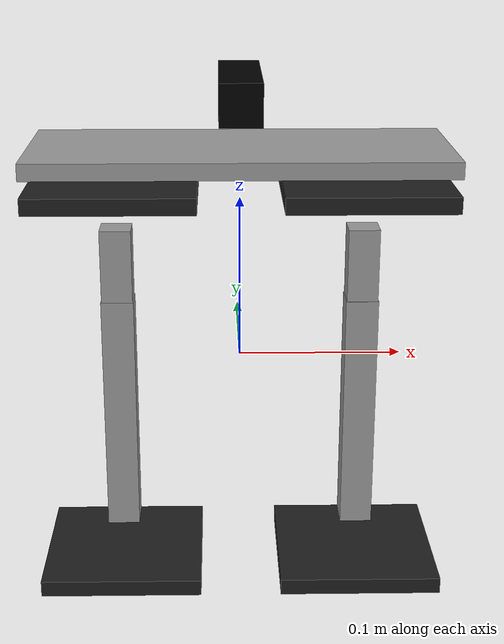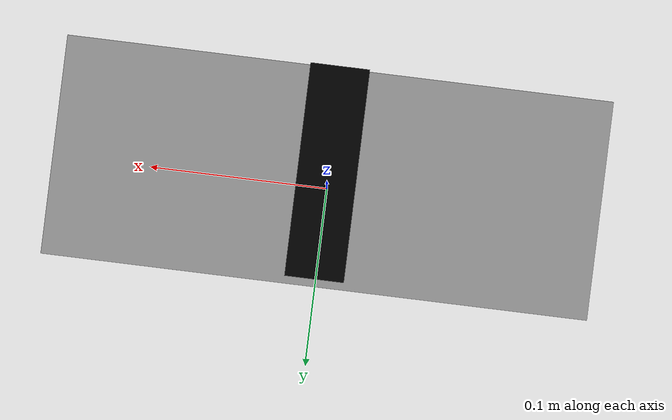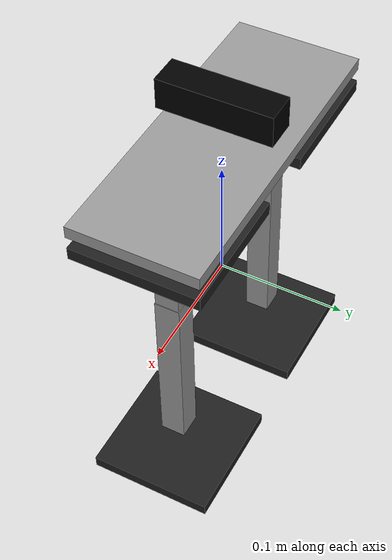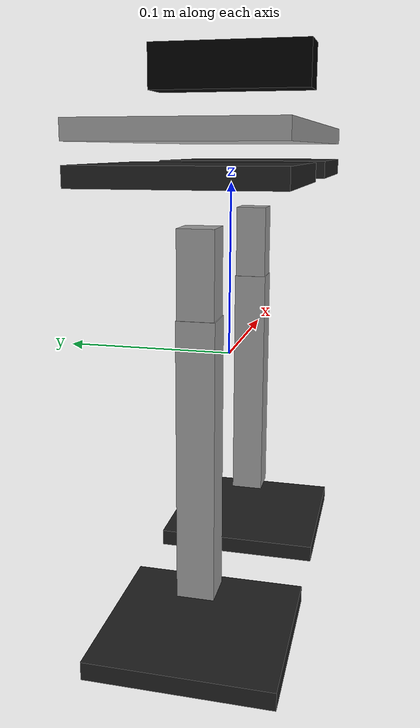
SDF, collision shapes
<?xml version='1.0'?>
<sdf version='1.7'>
  <model name='hyrecro_B_serial_realsense'>
    <link name='foot_A'>
      <inertial>
        <mass>1</mass>
        <inertia>
          <ixx>0.166667</ixx>
          <ixy>0</ixy>
          <ixz>0</ixz>
          <iyy>0.166667</iyy>
          <iyz>0</iyz>
          <izz>0.166667</izz>
        </inertia>
        <pose>0 0 0 0 -0 0</pose>
      </inertial>
      <pose>-0.075 -0 -0.138333 0 -0 0</pose>
      <gravity>1</gravity>
      <self_collide>0</self_collide>
      <kinematic>0</kinematic>
      <enable_wind>0</enable_wind>
      <visual name='visual'>
        <pose>0 0 0 0 -0 0</pose>
        <geometry>
          <box>
            <size>0.1 0.1 0.01</size>
          </box>
        </geometry>
        <material>
          <lighting>1</lighting>
          <script>
            <uri>file://media/materials/scripts/gazebo.material</uri>
            <name>Gazebo/Black</name>
          </script>
          <shader type='pixel'>
            <normal_map>__default__</normal_map>
          </shader>
          <ambient>0 0 0 1</ambient>
          <diffuse>0.7 0.7 0.7 1</diffuse>
          <specular>0.01 0.01 0.01 1</specular>
          <emissive>0 0 0 1</emissive>
        </material>
        <transparency>0</transparency>
        <cast_shadows>1</cast_shadows>
      </visual>
      <collision name='collision'>
        <laser_retro>0</laser_retro>
        <max_contacts>10</max_contacts>
        <pose>0 0 0 0 -0 0</pose>
        <geometry>
          <box>
            <size>0.1 0.1 0.01</size>
          </box>
        </geometry>
        <surface>
          <friction>
            <ode>
              <mu>1</mu>
              <mu2>1</mu2>
              <fdir1>0 0 0</fdir1>
              <slip1>0</slip1>
              <slip2>0</slip2>
            </ode>
            <torsional>
              <coefficient>1</coefficient>
              <patch_radius>0</patch_radius>
              <surface_radius>0</surface_radius>
              <use_patch_radius>1</use_patch_radius>
              <ode>
                <slip>0</slip>
              </ode>
            </torsional>
          </friction>
          <bounce>
            <restitution_coefficient>0</restitution_coefficient>
            <threshold>1e+06</threshold>
          </bounce>
          <contact>
            <collide_without_contact>0</collide_without_contact>
            <collide_without_contact_bitmask>1</collide_without_contact_bitmask>
            <collide_bitmask>1</collide_bitmask>
            <ode>
              <soft_cfm>0</soft_cfm>
              <soft_erp>0.2</soft_erp>
              <kp>1e+13</kp>
              <kd>1</kd>
              <max_vel>0.01</max_vel>
              <min_depth>0</min_depth>
            </ode>
            <bullet>
              <split_impulse>1</split_impulse>
              <split_impulse_penetration_threshold>-0.01</split_impulse_penetration_threshold>
              <soft_cfm>0</soft_cfm>
              <soft_erp>0.2</soft_erp>
              <kp>1e+13</kp>
              <kd>1</kd>
            </bullet>
          </contact>
        </surface>
      </collision>
    </link>
    <link name='foot_B'>
      <inertial>
        <mass>1</mass>
        <inertia>
          <ixx>0.166667</ixx>
          <ixy>0</ixy>
          <ixz>0</ixz>
          <iyy>0.166667</iyy>
          <iyz>0</iyz>
          <izz>0.166667</izz>
        </inertia>
        <pose>0 0 0 0 -0 0</pose>
      </inertial>
      <pose>0.075 0 -0.138333 0 -0 0</pose>
      <gravity>1</gravity>
      <self_collide>0</self_collide>
      <kinematic>0</kinematic>
      <enable_wind>0</enable_wind>
      <visual name='visual'>
        <pose>0 0 0 0 -0 0</pose>
        <geometry>
          <box>
            <size>0.1 0.1 0.01</size>
          </box>
        </geometry>
        <material>
          <lighting>1</lighting>
          <script>
            <uri>file://media/materials/scripts/gazebo.material</uri>
            <name>Gazebo/Black</name>
          </script>
          <shader type='pixel'>
            <normal_map>__default__</normal_map>
          </shader>
          <ambient>0.961 0.475 0 1</ambient>
          <diffuse>0.7 0.7 0.7 1</diffuse>
          <specular>0.01 0.01 0.01 1</specular>
          <emissive>0 0 0 1</emissive>
        </material>
        <transparency>0</transparency>
        <cast_shadows>1</cast_shadows>
      </visual>
      <collision name='collision'>
        <laser_retro>0</laser_retro>
        <max_contacts>10</max_contacts>
        <pose>0 0 0 0 -0 0</pose>
        <geometry>
          <box>
            <size>0.1 0.1 0.01</size>
          </box>
        </geometry>
        <surface>
          <friction>
            <ode>
              <mu>1</mu>
              <mu2>1</mu2>
              <fdir1>0 0 0</fdir1>
              <slip1>0</slip1>
              <slip2>0</slip2>
            </ode>
            <torsional>
              <coefficient>1</coefficient>
              <patch_radius>0</patch_radius>
              <surface_radius>0</surface_radius>
              <use_patch_radius>1</use_patch_radius>
              <ode>
                <slip>0</slip>
              </ode>
            </torsional>
          </friction>
          <bounce>
            <restitution_coefficient>0</restitution_coefficient>
            <threshold>1e+06</threshold>
          </bounce>
          <contact>
            <collide_without_contact>0</collide_without_contact>
            <collide_without_contact_bitmask>1</collide_without_contact_bitmask>
            <collide_bitmask>1</collide_bitmask>
            <ode>
              <soft_cfm>0</soft_cfm>
              <soft_erp>0.2</soft_erp>
              <kp>1e+13</kp>
              <kd>1</kd>
              <max_vel>0.01</max_vel>
              <min_depth>0</min_depth>
            </ode>
            <bullet>
              <split_impulse>1</split_impulse>
              <split_impulse_penetration_threshold>-0.01</split_impulse_penetration_threshold>
              <soft_cfm>0</soft_cfm>
              <soft_erp>0.2</soft_erp>
              <kp>1e+13</kp>
              <kd>1</kd>
            </bullet>
          </contact>
        </surface>
      </collision>
    </link>
    <link name='hip'>
      <inertial>
        <mass>1</mass>
        <inertia>
          <ixx>0.166667</ixx>
          <ixy>0</ixy>
          <ixz>0</ixz>
          <iyy>0.166667</iyy>
          <iyz>0</iyz>
          <izz>0.166667</izz>
        </inertia>
        <pose>0 0 0 0 -0 0</pose>
      </inertial>
      <pose>0 -0 0.126667 0 -0 0</pose>
      <gravity>1</gravity>
      <self_collide>0</self_collide>
      <kinematic>0</kinematic>
      <enable_wind>0</enable_wind>
      <visual name='visual'>
        <pose>0 0 0 0 -0 0</pose>
        <geometry>
          <box>
            <size>0.25 0.1 0.01</size>
          </box>
        </geometry>
        <material>
          <lighting>1</lighting>
          <script>
            <uri>file://media/materials/scripts/gazebo.material</uri>
            <name>Gazebo/Grey</name>
          </script>
          <shader type='pixel'>
            <normal_map>__default__</normal_map>
          </shader>
          <ambient>0.729 0.741 0.714 1</ambient>
          <diffuse>0.7 0.7 0.7 1</diffuse>
          <specular>0.01 0.01 0.01 1</specular>
          <emissive>0 0 0 1</emissive>
        </material>
        <transparency>0</transparency>
        <cast_shadows>1</cast_shadows>
      </visual>
      <collision name='collision'>
        <laser_retro>0</laser_retro>
        <max_contacts>10</max_contacts>
        <pose>0 0 0 0 -0 0</pose>
        <geometry>
          <box>
            <size>0.25 0.1 0.01</size>
          </box>
        </geometry>
        <surface>
          <friction>
            <ode>
              <mu>1</mu>
              <mu2>1</mu2>
              <fdir1>0 0 0</fdir1>
              <slip1>0</slip1>
              <slip2>0</slip2>
            </ode>
            <torsional>
              <coefficient>1</coefficient>
              <patch_radius>0</patch_radius>
              <surface_radius>0</surface_radius>
              <use_patch_radius>1</use_patch_radius>
              <ode>
                <slip>0</slip>
              </ode>
            </torsional>
          </friction>
          <bounce>
            <restitution_coefficient>0</restitution_coefficient>
            <threshold>1e+06</threshold>
          </bounce>
          <contact>
            <collide_without_contact>0</collide_without_contact>
            <collide_without_contact_bitmask>1</collide_without_contact_bitmask>
            <collide_bitmask>1</collide_bitmask>
            <ode>
              <soft_cfm>0</soft_cfm>
              <soft_erp>0.2</soft_erp>
              <kp>1e+13</kp>
              <kd>1</kd>
              <max_vel>0.01</max_vel>
              <min_depth>0</min_depth>
            </ode>
            <bullet>
              <split_impulse>1</split_impulse>
              <split_impulse_penetration_threshold>-0.01</split_impulse_penetration_threshold>
              <soft_cfm>0</soft_cfm>
              <soft_erp>0.2</soft_erp>
              <kp>1e+13</kp>
              <kd>1</kd>
            </bullet>
          </contact>
        </surface>
      </collision>
    </link>
    <link name='hip_A'>
      <inertial>
        <mass>1</mass>
        <inertia>
          <ixx>0.166667</ixx>
          <ixy>0</ixy>
          <ixz>0</ixz>
          <iyy>0.166667</iyy>
          <iyz>0</iyz>
          <izz>0.166667</izz>
        </inertia>
        <pose>0 0 0 0 -0 0</pose>
      </inertial>
      <pose>-0.075 0 0.106667 0 -0 0</pose>
      <gravity>1</gravity>
      <self_collide>0</self_collide>
      <kinematic>0</kinematic>
      <enable_wind>0</enable_wind>
      <visual name='visual'>
        <pose>0 0 0 0 -0 0</pose>
        <geometry>
          <box>
            <size>0.1 0.1 0.01</size>
          </box>
        </geometry>
        <material>
          <lighting>1</lighting>
          <script>
            <uri>file://media/materials/scripts/gazebo.material</uri>
            <name>Gazebo/Black</name>
          </script>
          <shader type='pixel'>
            <normal_map>__default__</normal_map>
          </shader>
          <ambient>0 0 0 1</ambient>
          <diffuse>0.7 0.7 0.7 1</diffuse>
          <specular>0.01 0.01 0.01 1</specular>
          <emissive>0 0 0 1</emissive>
        </material>
        <transparency>0</transparency>
        <cast_shadows>1</cast_shadows>
      </visual>
      <collision name='collision'>
        <laser_retro>0</laser_retro>
        <max_contacts>10</max_contacts>
        <pose>0 0 0 0 -0 0</pose>
        <geometry>
          <box>
            <size>0.1 0.1 0.01</size>
          </box>
        </geometry>
        <surface>
          <friction>
            <ode>
              <mu>1</mu>
              <mu2>1</mu2>
              <fdir1>0 0 0</fdir1>
              <slip1>0</slip1>
              <slip2>0</slip2>
            </ode>
            <torsional>
              <coefficient>1</coefficient>
              <patch_radius>0</patch_radius>
              <surface_radius>0</surface_radius>
              <use_patch_radius>1</use_patch_radius>
              <ode>
                <slip>0</slip>
              </ode>
            </torsional>
          </friction>
          <bounce>
            <restitution_coefficient>0</restitution_coefficient>
            <threshold>1e+06</threshold>
          </bounce>
          <contact>
            <collide_without_contact>0</collide_without_contact>
            <collide_without_contact_bitmask>1</collide_without_contact_bitmask>
            <collide_bitmask>1</collide_bitmask>
            <ode>
              <soft_cfm>0</soft_cfm>
              <soft_erp>0.2</soft_erp>
              <kp>1e+13</kp>
              <kd>1</kd>
              <max_vel>0.01</max_vel>
              <min_depth>0</min_depth>
            </ode>
            <bullet>
              <split_impulse>1</split_impulse>
              <split_impulse_penetration_threshold>-0.01</split_impulse_penetration_threshold>
              <soft_cfm>0</soft_cfm>
              <soft_erp>0.2</soft_erp>
              <kp>1e+13</kp>
              <kd>1</kd>
            </bullet>
          </contact>
        </surface>
      </collision>
    </link>
    <link name='hip_B'>
      <inertial>
        <mass>1</mass>
        <inertia>
          <ixx>0.166667</ixx>
          <ixy>0</ixy>
          <ixz>0</ixz>
          <iyy>0.166667</iyy>
          <iyz>0</iyz>
          <izz>0.166667</izz>
        </inertia>
        <pose>0 0 0 0 -0 0</pose>
      </inertial>
      <pose>0.075 0 0.106667 0 -0 0</pose>
      <gravity>1</gravity>
      <self_collide>0</self_collide>
      <kinematic>0</kinematic>
      <enable_wind>0</enable_wind>
      <visual name='visual'>
        <pose>0 0 0 0 -0 0</pose>
        <geometry>
          <box>
            <size>0.1 0.1 0.01</size>
          </box>
        </geometry>
        <material>
          <lighting>1</lighting>
          <script>
            <uri>file://media/materials/scripts/gazebo.material</uri>
            <name>Gazebo/Black</name>
          </script>
          <shader type='pixel'>
            <normal_map>__default__</normal_map>
          </shader>
          <ambient>0 0 0 1</ambient>
          <diffuse>0.7 0.7 0.7 1</diffuse>
          <specular>0.01 0.01 0.01 1</specular>
          <emissive>0 0 0 1</emissive>
        </material>
        <transparency>0</transparency>
        <cast_shadows>1</cast_shadows>
      </visual>
      <collision name='collision'>
        <laser_retro>0</laser_retro>
        <max_contacts>10</max_contacts>
        <pose>0 0 0 0 -0 0</pose>
        <geometry>
          <box>
            <size>0.1 0.1 0.01</size>
          </box>
        </geometry>
        <surface>
          <friction>
            <ode>
              <mu>1</mu>
              <mu2>1</mu2>
              <fdir1>0 0 0</fdir1>
              <slip1>0</slip1>
              <slip2>0</slip2>
            </ode>
            <torsional>
              <coefficient>1</coefficient>
              <patch_radius>0</patch_radius>
              <surface_radius>0</surface_radius>
              <use_patch_radius>1</use_patch_radius>
              <ode>
                <slip>0</slip>
              </ode>
            </torsional>
          </friction>
          <bounce>
            <restitution_coefficient>0</restitution_coefficient>
            <threshold>1e+06</threshold>
          </bounce>
          <contact>
            <collide_without_contact>0</collide_without_contact>
            <collide_without_contact_bitmask>1</collide_without_contact_bitmask>
            <collide_bitmask>1</collide_bitmask>
            <ode>
              <soft_cfm>0</soft_cfm>
              <soft_erp>0.2</soft_erp>
              <kp>1e+13</kp>
              <kd>1</kd>
              <max_vel>0.01</max_vel>
              <min_depth>0</min_depth>
            </ode>
            <bullet>
              <split_impulse>1</split_impulse>
              <split_impulse_penetration_threshold>-0.01</split_impulse_penetration_threshold>
              <soft_cfm>0</soft_cfm>
              <soft_erp>0.2</soft_erp>
              <kp>1e+13</kp>
              <kd>1</kd>
            </bullet>
          </contact>
        </surface>
      </collision>
    </link>
    <link name='pist_1A'>
      <inertial>
        <mass>1</mass>
        <inertia>
          <ixx>0.166667</ixx>
          <ixy>0</ixy>
          <ixz>0</ixz>
          <iyy>0.166667</iyy>
          <iyz>0</iyz>
          <izz>0.166667</izz>
        </inertia>
        <pose>0 0 0 0 -0 0</pose>
      </inertial>
      <pose>-0.075 0 0.006667 0 -0 0</pose>
      <gravity>1</gravity>
      <self_collide>0</self_collide>
      <kinematic>0</kinematic>
      <enable_wind>0</enable_wind>
      <visual name='visual'>
        <pose>0 0 0 0 -0 0</pose>
        <geometry>
          <box>
            <size>0.019 0.019 0.15</size>
          </box>
        </geometry>
        <material>
          <lighting>1</lighting>
          <script>
            <uri>file://media/materials/scripts/gazebo.material</uri>
            <name>Gazebo/Grey</name>
          </script>
          <shader type='pixel'>
            <normal_map>__default__</normal_map>
          </shader>
          <ambient>0.729 0.741 0.714 1</ambient>
          <diffuse>0.7 0.7 0.7 1</diffuse>
          <specular>0.01 0.01 0.01 1</specular>
          <emissive>0 0 0 1</emissive>
        </material>
        <transparency>0</transparency>
        <cast_shadows>1</cast_shadows>
      </visual>
      <collision name='collision'>
        <laser_retro>0</laser_retro>
        <max_contacts>10</max_contacts>
        <pose>0 0 0 0 -0 0</pose>
        <geometry>
          <box>
            <size>0.019 0.019 0.15</size>
          </box>
        </geometry>
        <surface>
          <friction>
            <ode>
              <mu>1</mu>
              <mu2>1</mu2>
              <fdir1>0 0 0</fdir1>
              <slip1>0</slip1>
              <slip2>0</slip2>
            </ode>
            <torsional>
              <coefficient>1</coefficient>
              <patch_radius>0</patch_radius>
              <surface_radius>0</surface_radius>
              <use_patch_radius>1</use_patch_radius>
              <ode>
                <slip>0</slip>
              </ode>
            </torsional>
          </friction>
          <bounce>
            <restitution_coefficient>0</restitution_coefficient>
            <threshold>1e+06</threshold>
          </bounce>
          <contact>
            <collide_without_contact>0</collide_without_contact>
            <collide_without_contact_bitmask>1</collide_without_contact_bitmask>
            <collide_bitmask>1</collide_bitmask>
            <ode>
              <soft_cfm>0</soft_cfm>
              <soft_erp>0.2</soft_erp>
              <kp>1e+13</kp>
              <kd>1</kd>
              <max_vel>0.01</max_vel>
              <min_depth>0</min_depth>
            </ode>
            <bullet>
              <split_impulse>1</split_impulse>
              <split_impulse_penetration_threshold>-0.01</split_impulse_penetration_threshold>
              <soft_cfm>0</soft_cfm>
              <soft_erp>0.2</soft_erp>
              <kp>1e+13</kp>
              <kd>1</kd>
            </bullet>
          </contact>
        </surface>
      </collision>
    </link>
    <link name='pist_1B'>
      <inertial>
        <mass>1</mass>
        <inertia>
          <ixx>0.166667</ixx>
          <ixy>0</ixy>
          <ixz>0</ixz>
          <iyy>0.166667</iyy>
          <iyz>0</iyz>
          <izz>0.166667</izz>
        </inertia>
        <pose>0 0 0 0 -0 0</pose>
      </inertial>
      <pose>0.075 0 0.006667 0 -0 0</pose>
      <gravity>1</gravity>
      <self_collide>0</self_collide>
      <kinematic>0</kinematic>
      <enable_wind>0</enable_wind>
      <visual name='visual'>
        <pose>0 0 0 0 -0 0</pose>
        <geometry>
          <box>
            <size>0.019 0.019 0.15</size>
          </box>
        </geometry>
        <material>
          <lighting>1</lighting>
          <script>
            <uri>file://media/materials/scripts/gazebo.material</uri>
            <name>Gazebo/Grey</name>
          </script>
          <shader type='pixel'>
            <normal_map>__default__</normal_map>
          </shader>
          <ambient>0.729 0.741 0.714 1</ambient>
          <diffuse>0.7 0.7 0.7 1</diffuse>
          <specular>0.01 0.01 0.01 1</specular>
          <emissive>0 0 0 1</emissive>
        </material>
        <transparency>0</transparency>
        <cast_shadows>1</cast_shadows>
      </visual>
      <collision name='collision'>
        <laser_retro>0</laser_retro>
        <max_contacts>10</max_contacts>
        <pose>0 0 0 0 -0 0</pose>
        <geometry>
          <box>
            <size>0.019 0.019 0.15</size>
          </box>
        </geometry>
        <surface>
          <friction>
            <ode>
              <mu>1</mu>
              <mu2>1</mu2>
              <fdir1>0 0 0</fdir1>
              <slip1>0</slip1>
              <slip2>0</slip2>
            </ode>
            <torsional>
              <coefficient>1</coefficient>
              <patch_radius>0</patch_radius>
              <surface_radius>0</surface_radius>
              <use_patch_radius>1</use_patch_radius>
              <ode>
                <slip>0</slip>
              </ode>
            </torsional>
          </friction>
          <bounce>
            <restitution_coefficient>0</restitution_coefficient>
            <threshold>1e+06</threshold>
          </bounce>
          <contact>
            <collide_without_contact>0</collide_without_contact>
            <collide_without_contact_bitmask>1</collide_without_contact_bitmask>
            <collide_bitmask>1</collide_bitmask>
            <ode>
              <soft_cfm>0</soft_cfm>
              <soft_erp>0.2</soft_erp>
              <kp>1e+13</kp>
              <kd>1</kd>
              <max_vel>0.01</max_vel>
              <min_depth>0</min_depth>
            </ode>
            <bullet>
              <split_impulse>1</split_impulse>
              <split_impulse_penetration_threshold>-0.01</split_impulse_penetration_threshold>
              <soft_cfm>0</soft_cfm>
              <soft_erp>0.2</soft_erp>
              <kp>1e+13</kp>
              <kd>1</kd>
            </bullet>
          </contact>
        </surface>
      </collision>
    </link>
    <link name='pist_2A'>
      <inertial>
        <mass>1</mass>
        <inertia>
          <ixx>0.166667</ixx>
          <ixy>0</ixy>
          <ixz>0</ixz>
          <iyy>0.166667</iyy>
          <iyz>0</iyz>
          <izz>0.166667</izz>
        </inertia>
        <pose>0 0 0 0 -0 0</pose>
      </inertial>
      <pose>-0.075 -0 -0.038333 0 -0 0</pose>
      <gravity>1</gravity>
      <self_collide>0</self_collide>
      <kinematic>0</kinematic>
      <enable_wind>0</enable_wind>
      <visual name='visual'>
        <pose>0 0 0 0 -0 0</pose>
        <geometry>
          <box>
            <size>0.02 0.02 0.15</size>
          </box>
        </geometry>
        <material>
          <lighting>1</lighting>
          <script>
            <uri>file://media/materials/scripts/gazebo.material</uri>
            <name>Gazebo/Grey</name>
          </script>
          <shader type='pixel'>
            <normal_map>__default__</normal_map>
          </shader>
          <ambient>0 0 0 1</ambient>
          <diffuse>0.7 0.7 0.7 1</diffuse>
          <specular>0.01 0.01 0.01 1</specular>
          <emissive>0 0 0 1</emissive>
        </material>
        <transparency>0</transparency>
        <cast_shadows>1</cast_shadows>
      </visual>
      <collision name='collision'>
        <laser_retro>0</laser_retro>
        <max_contacts>10</max_contacts>
        <pose>0 0 0 0 -0 0</pose>
        <geometry>
          <box>
            <size>0.02 0.02 0.15</size>
          </box>
        </geometry>
        <surface>
          <friction>
            <ode>
              <mu>1</mu>
              <mu2>1</mu2>
              <fdir1>0 0 0</fdir1>
              <slip1>0</slip1>
              <slip2>0</slip2>
            </ode>
            <torsional>
              <coefficient>1</coefficient>
              <patch_radius>0</patch_radius>
              <surface_radius>0</surface_radius>
              <use_patch_radius>1</use_patch_radius>
              <ode>
                <slip>0</slip>
              </ode>
            </torsional>
          </friction>
          <bounce>
            <restitution_coefficient>0</restitution_coefficient>
            <threshold>1e+06</threshold>
          </bounce>
          <contact>
            <collide_without_contact>0</collide_without_contact>
            <collide_without_contact_bitmask>1</collide_without_contact_bitmask>
            <collide_bitmask>1</collide_bitmask>
            <ode>
              <soft_cfm>0</soft_cfm>
              <soft_erp>0.2</soft_erp>
              <kp>1e+13</kp>
              <kd>1</kd>
              <max_vel>0.01</max_vel>
              <min_depth>0</min_depth>
            </ode>
            <bullet>
              <split_impulse>1</split_impulse>
              <split_impulse_penetration_threshold>-0.01</split_impulse_penetration_threshold>
              <soft_cfm>0</soft_cfm>
              <soft_erp>0.2</soft_erp>
              <kp>1e+13</kp>
              <kd>1</kd>
            </bullet>
          </contact>
        </surface>
      </collision>
    </link>
    <link name='pist_2B'>
      <inertial>
        <mass>1</mass>
        <inertia>
          <ixx>0.166667</ixx>
          <ixy>0</ixy>
          <ixz>0</ixz>
          <iyy>0.166667</iyy>
          <iyz>0</iyz>
          <izz>0.166667</izz>
        </inertia>
        <pose>0 0 0 0 -0 0</pose>
      </inertial>
      <pose>0.075 -0 -0.038333 0 -0 0</pose>
      <gravity>1</gravity>
      <self_collide>0</self_collide>
      <kinematic>0</kinematic>
      <enable_wind>0</enable_wind>
      <visual name='visual'>
        <pose>0 0 0 0 -0 0</pose>
        <geometry>
          <box>
            <size>0.02 0.02 0.15</size>
          </box>
        </geometry>
        <material>
          <lighting>1</lighting>
          <script>
            <uri>file://media/materials/scripts/gazebo.material</uri>
            <name>Gazebo/Grey</name>
          </script>
          <shader type='pixel'>
            <normal_map>__default__</normal_map>
          </shader>
          <ambient>0 0 0 1</ambient>
          <diffuse>0.7 0.7 0.7 1</diffuse>
          <specular>0.01 0.01 0.01 1</specular>
          <emissive>0 0 0 1</emissive>
        </material>
        <transparency>0</transparency>
        <cast_shadows>1</cast_shadows>
      </visual>
      <collision name='collision'>
        <laser_retro>0</laser_retro>
        <max_contacts>10</max_contacts>
        <pose>0 0 0 0 -0 0</pose>
        <geometry>
          <box>
            <size>0.02 0.02 0.15</size>
          </box>
        </geometry>
        <surface>
          <friction>
            <ode>
              <mu>1</mu>
              <mu2>1</mu2>
              <fdir1>0 0 0</fdir1>
              <slip1>0</slip1>
              <slip2>0</slip2>
            </ode>
            <torsional>
              <coefficient>1</coefficient>
              <patch_radius>0</patch_radius>
              <surface_radius>0</surface_radius>
              <use_patch_radius>1</use_patch_radius>
              <ode>
                <slip>0</slip>
              </ode>
            </torsional>
          </friction>
          <bounce>
            <restitution_coefficient>0</restitution_coefficient>
            <threshold>1e+06</threshold>
          </bounce>
          <contact>
            <collide_without_contact>0</collide_without_contact>
            <collide_without_contact_bitmask>1</collide_without_contact_bitmask>
            <collide_bitmask>1</collide_bitmask>
            <ode>
              <soft_cfm>0</soft_cfm>
              <soft_erp>0.2</soft_erp>
              <kp>1e+13</kp>
              <kd>1</kd>
              <max_vel>0.01</max_vel>
              <min_depth>0</min_depth>
            </ode>
            <bullet>
              <split_impulse>1</split_impulse>
              <split_impulse_penetration_threshold>-0.01</split_impulse_penetration_threshold>
              <soft_cfm>0</soft_cfm>
              <soft_erp>0.2</soft_erp>
              <kp>1e+13</kp>
              <kd>1</kd>
            </bullet>
          </contact>
        </surface>
      </collision>
    </link>
    <link name='d435'>
      <inertial>
        <pose>0 0.0175 0.0125 0 -0 0</pose>
        <mass>0.564</mass>
        <inertia>
          <ixx>0.00388124</ixx>
          <ixy>0</ixy>
          <ixz>0</ixz>
          <iyy>0.00049894</iyy>
          <iyz>0</iyz>
          <izz>0.00387926</izz>
        </inertia>
      </inertial>
      <self_collide>0</self_collide>
      <enable_wind>0</enable_wind>
      <kinematic>0</kinematic>
      <gravity>1</gravity>
      <sensor name='cameracolor' type='camera'>
        <camera name='camera'>
          <horizontal_fov>1.21126</horizontal_fov>
          <image>
            <width>640</width>
            <height>480</height>
            <format>RGB_INT8</format>
          </image>
          <clip>
            <near>0.1</near>
            <far>100</far>
          </clip>
          <noise>
            <type>gaussian</type>
            <mean>0</mean>
            <stddev>0.007</stddev>
          </noise>
        </camera>
        <always_on>1</always_on>
        <update_rate>30</update_rate>
        <visualize>1</visualize>
        <pose>0 0.0175 0.0125 0 -0 0</pose>
      </sensor>
      <sensor name='cameraired1' type='camera'>
        <camera name='camera'>
          <horizontal_fov>1.48702</horizontal_fov>
          <image>
            <width>1280</width>
            <height>720</height>
            <format>L_INT8</format>
          </image>
          <clip>
            <near>0.1</near>
            <far>100</far>
          </clip>
          <noise>
            <type>gaussian</type>
            <mean>0</mean>
            <stddev>0.05</stddev>
          </noise>
        </camera>
        <always_on>1</always_on>
        <update_rate>90</update_rate>
        <visualize>0</visualize>
        <pose>0 0.0175 0.0125 0 -0 0</pose>
      </sensor>
      <sensor name='cameraired2' type='camera'>
        <camera name='camera'>
          <horizontal_fov>1.48702</horizontal_fov>
          <image>
            <width>1280</width>
            <height>720</height>
            <format>L_INT8</format>
          </image>
          <clip>
            <near>0.1</near>
            <far>100</far>
          </clip>
          <noise>
            <type>gaussian</type>
            <mean>0</mean>
            <stddev>0.05</stddev>
          </noise>
        </camera>
        <always_on>1</always_on>
        <update_rate>90</update_rate>
        <visualize>0</visualize>
        <pose>0 0.0175 0.0125 0 -0 0</pose>
      </sensor>
      <sensor name='cameradepth' type='depth'>
        <camera name='camera'>
          <horizontal_fov>1.48702</horizontal_fov>
          <image>
            <width>1280</width>
            <height>720</height>
          </image>
          <clip>
            <near>0.1</near>
            <far>100</far>
          </clip>
          <noise>
            <type>gaussian</type>
            <mean>0</mean>
            <stddev>0.1</stddev>
          </noise>
        </camera>
        <always_on>1</always_on>
        <update_rate>90</update_rate>
        <visualize>0</visualize>
        <pose>0 0.0175 0.0125 0 -0 0</pose>
      </sensor>
      <pose>-0 0 0.15 0 -0 0</pose>
      <visual name='base_link_fixed_joint_lump__camera_link_visual'>
        <pose>0.0149 0 0.0125 1.5708 -0 1.5708</pose>
        <geometry>
          <mesh>
            <scale>1 1 1</scale>
            <uri>/home/arvc/catkin_ws/src/issaiass/realsense2_description/meshes/d435.dae</uri>
          </mesh>
        </geometry>
        <material>
          <shader type='pixel'>
            <normal_map>__default__</normal_map>
          </shader>
          <script>
            <name>ModelPreview_1::d435::base_link_fixed_joint_lump__camera_link_visual_MATERIAL_</name>
            <uri>__default__</uri>
          </script>
          <ambient>0.533 0.541 0.522 1</ambient>
          <diffuse>0 0 0 1</diffuse>
          <specular>0 0 0 1</specular>
          <emissive>0 0 0 1</emissive>
        </material>
        <transparency>0</transparency>
        <cast_shadows>1</cast_shadows>
      </visual>
      <collision name='base_link_fixed_joint_lump__camera_link_collision'>
        <laser_retro>0</laser_retro>
        <max_contacts>10</max_contacts>
        <pose>0 0 0.0125 0 -0 0</pose>
        <geometry>
          <box>
            <size>0.02505 0.09 0.025</size>
          </box>
        </geometry>
        <surface>
          <friction>
            <ode>
              <mu>1</mu>
              <mu2>1</mu2>
              <fdir1>0 0 0</fdir1>
              <slip1>0</slip1>
              <slip2>0</slip2>
            </ode>
            <torsional>
              <coefficient>1</coefficient>
              <patch_radius>0</patch_radius>
              <surface_radius>0</surface_radius>
              <use_patch_radius>1</use_patch_radius>
              <ode>
                <slip>0</slip>
              </ode>
            </torsional>
          </friction>
          <bounce>
            <restitution_coefficient>0</restitution_coefficient>
            <threshold>1e+06</threshold>
          </bounce>
          <contact>
            <collide_without_contact>0</collide_without_contact>
            <collide_without_contact_bitmask>1</collide_without_contact_bitmask>
            <collide_bitmask>1</collide_bitmask>
            <ode>
              <soft_cfm>0</soft_cfm>
              <soft_erp>0.2</soft_erp>
              <kp>1e+13</kp>
              <kd>1</kd>
              <max_vel>0.01</max_vel>
              <min_depth>0</min_depth>
            </ode>
            <bullet>
              <split_impulse>1</split_impulse>
              <split_impulse_penetration_threshold>-0.01</split_impulse_penetration_threshold>
              <soft_cfm>0</soft_cfm>
              <soft_erp>0.2</soft_erp>
              <kp>1e+13</kp>
              <kd>1</kd>
            </bullet>
          </contact>
        </surface>
      </collision>
    </link>
    <joint name='q1' type='revolute'>
      <parent>pist_2A</parent>
      <child>foot_A</child>
      <pose>0 0 0.025 1.57079 -0 0</pose>
      <axis>
        <xyz>0 0 1</xyz>
        <limit>
          <lower>-1.79769e+308</lower>
          <upper>1.79769e+308</upper>
          <effort>-1</effort>
          <velocity>-1</velocity>
        </limit>
        <dynamics>
          <spring_reference>0</spring_reference>
          <spring_stiffness>0</spring_stiffness>
          <damping>0</damping>
          <friction>0</friction>
        </dynamics>
      </axis>
      <physics>
        <ode>
          <limit>
            <cfm>0</cfm>
            <erp>0.2</erp>
          </limit>
          <suspension>
            <cfm>0</cfm>
            <erp>0.2</erp>
          </suspension>
        </ode>
      </physics>
    </joint>
    <joint name='q2' type='prismatic'>
      <parent>pist_1A</parent>
      <child>pist_2A</child>
      <pose>0 0 -0.03 0 -0 0</pose>
      <axis>
        <xyz>0 0 1</xyz>
        <limit>
          <lower>-1.79769e+308</lower>
          <upper>1.79769e+308</upper>
          <effort>-1</effort>
          <velocity>-1</velocity>
        </limit>
        <dynamics>
          <spring_reference>0</spring_reference>
          <spring_stiffness>0</spring_stiffness>
          <damping>0</damping>
          <friction>0</friction>
        </dynamics>
      </axis>
      <physics>
        <ode>
          <limit>
            <cfm>0</cfm>
            <erp>0.2</erp>
          </limit>
          <suspension>
            <cfm>0</cfm>
            <erp>0.2</erp>
          </suspension>
        </ode>
      </physics>
    </joint>
    <joint name='q3' type='revolute'>
      <parent>hip_A</parent>
      <child>pist_1A</child>
      <pose>0 0 0.075 1.57079 -0 0</pose>
      <axis>
        <xyz>0 0 1</xyz>
        <limit>
          <lower>-1.79769e+308</lower>
          <upper>1.79769e+308</upper>
          <effort>-1</effort>
          <velocity>-1</velocity>
        </limit>
        <dynamics>
          <spring_reference>0</spring_reference>
          <spring_stiffness>0</spring_stiffness>
          <damping>0</damping>
          <friction>0</friction>
        </dynamics>
      </axis>
      <physics>
        <ode>
          <limit>
            <cfm>0</cfm>
            <erp>0.2</erp>
          </limit>
          <suspension>
            <cfm>0</cfm>
            <erp>0.2</erp>
          </suspension>
        </ode>
      </physics>
    </joint>
    <joint name='q4' type='revolute'>
      <parent>hip</parent>
      <child>hip_A</child>
      <pose>0 0 0.02 0 -0 0</pose>
      <axis>
        <xyz>0 0 1</xyz>
        <limit>
          <lower>-1.79769e+308</lower>
          <upper>1.79769e+308</upper>
          <effort>-1</effort>
          <velocity>-1</velocity>
        </limit>
        <dynamics>
          <spring_reference>0</spring_reference>
          <spring_stiffness>0</spring_stiffness>
          <damping>0</damping>
          <friction>0</friction>
        </dynamics>
      </axis>
      <physics>
        <ode>
          <limit>
            <cfm>0</cfm>
            <erp>0.2</erp>
          </limit>
          <suspension>
            <cfm>0</cfm>
            <erp>0.2</erp>
          </suspension>
        </ode>
      </physics>
    </joint>
    <joint name='q5' type='revolute'>
      <parent>hip_B</parent>
      <child>hip</child>
      <pose>0.075 0 0 0 -0 0</pose>
      <axis>
        <xyz>0 0 1</xyz>
        <limit>
          <lower>-1.79769e+308</lower>
          <upper>1.79769e+308</upper>
          <effort>-1</effort>
          <velocity>-1</velocity>
        </limit>
        <dynamics>
          <spring_reference>0</spring_reference>
          <spring_stiffness>0</spring_stiffness>
          <damping>0</damping>
          <friction>0</friction>
        </dynamics>
      </axis>
      <physics>
        <ode>
          <limit>
            <cfm>0</cfm>
            <erp>0.2</erp>
          </limit>
          <suspension>
            <cfm>0</cfm>
            <erp>0.2</erp>
          </suspension>
        </ode>
      </physics>
    </joint>
    <joint name='q6' type='revolute'>
      <parent>pist_1B</parent>
      <child>hip_B</child>
      <pose>0 0 -0.025 1.57079 -0 0</pose>
      <axis>
        <xyz>0 0 1</xyz>
        <limit>
          <lower>-1.79769e+308</lower>
          <upper>1.79769e+308</upper>
          <effort>-1</effort>
          <velocity>-1</velocity>
        </limit>
        <dynamics>
          <spring_reference>0</spring_reference>
          <spring_stiffness>0</spring_stiffness>
          <damping>0</damping>
          <friction>0</friction>
        </dynamics>
      </axis>
      <physics>
        <ode>
          <limit>
            <cfm>0</cfm>
            <erp>0.2</erp>
          </limit>
          <suspension>
            <cfm>0</cfm>
            <erp>0.2</erp>
          </suspension>
        </ode>
      </physics>
    </joint>
    <joint name='q7' type='prismatic'>
      <parent>pist_2B</parent>
      <child>pist_1B</child>
      <pose>0 0 -0.075 0 -0 0</pose>
      <axis>
        <xyz>0 0 -1</xyz>
        <limit>
          <lower>-1.79769e+308</lower>
          <upper>1.79769e+308</upper>
          <effort>-1</effort>
          <velocity>-1</velocity>
        </limit>
        <dynamics>
          <spring_reference>0</spring_reference>
          <spring_stiffness>0</spring_stiffness>
          <damping>0</damping>
          <friction>0</friction>
        </dynamics>
      </axis>
      <physics>
        <ode>
          <limit>
            <cfm>0</cfm>
            <erp>0.2</erp>
          </limit>
          <suspension>
            <cfm>0</cfm>
            <erp>0.2</erp>
          </suspension>
        </ode>
      </physics>
    </joint>
    <joint name='q8' type='revolute'>
      <parent>foot_B</parent>
      <child>pist_2B</child>
      <pose>0 0 -0.075 1.57079 -0 0</pose>
      <axis>
        <xyz>0 0 1</xyz>
        <limit>
          <lower>-1.79769e+308</lower>
          <upper>1.79769e+308</upper>
          <effort>-1</effort>
          <velocity>-1</velocity>
        </limit>
        <dynamics>
          <spring_reference>0</spring_reference>
          <spring_stiffness>0</spring_stiffness>
          <damping>0</damping>
          <friction>0</friction>
        </dynamics>
      </axis>
      <physics>
        <ode>
          <limit>
            <cfm>0</cfm>
            <erp>0.2</erp>
          </limit>
          <suspension>
            <cfm>0</cfm>
            <erp>0.2</erp>
          </suspension>
        </ode>
      </physics>
    </joint>
    <joint name='hip_realsense_joint' type='fixed'>
      <parent>hip</parent>
      <child>d435</child>
      <pose>0 0 0 0 -0 0</pose>
      <physics>
        <ode>
          <limit>
            <cfm>0</cfm>
            <erp>0.2</erp>
          </limit>
          <suspension>
            <cfm>0</cfm>
            <erp>0.2</erp>
          </suspension>
        </ode>
      </physics>
    </joint>
    <static>0</static>
    <allow_auto_disable>1</allow_auto_disable>
    <plugin name='camera' filename='librealsense_gazebo_plugin.so'>
      <prefix>camera</prefix>
      <depthUpdateRate>30.0</depthUpdateRate>
      <colorUpdateRate>30.0</colorUpdateRate>
      <infraredUpdateRate>30.0</infraredUpdateRate>
      <depthTopicName>depth/image_raw</depthTopicName>
      <depthCameraInfoTopicName>depth/camera_info</depthCameraInfoTopicName>
      <colorTopicName>color/image_raw</colorTopicName>
      <colorCameraInfoTopicName>color/camera_info</colorCameraInfoTopicName>
      <infrared1TopicName>infra1/image_raw</infrared1TopicName>
      <infrared1CameraInfoTopicName>infra1/camera_info</infrared1CameraInfoTopicName>
      <infrared2TopicName>infra2/image_raw</infrared2TopicName>
      <infrared2CameraInfoTopicName>infra2/camera_info</infrared2CameraInfoTopicName>
      <colorOpticalframeName>camera_color_optical_frame</colorOpticalframeName>
      <depthOpticalframeName>camera_depth_optical_frame</depthOpticalframeName>
      <infrared1OpticalframeName>camera_left_ir_optical_frame</infrared1OpticalframeName>
      <infrared2OpticalframeName>camera_right_ir_optical_frame</infrared2OpticalframeName>
      <rangeMinDepth>0.2</rangeMinDepth>
      <rangeMaxDepth>3.0</rangeMaxDepth>
      <pointCloud>1</pointCloud>
      <pointCloudTopicName>depth/color/points</pointCloudTopicName>
      <pointCloudCutoff>0.25</pointCloudCutoff>
      <pointCloudCutoffMax>9.0</pointCloudCutoffMax>
      <robotNamespace>/</robotNamespace>
    </plugin>
  </model>
</sdf>
